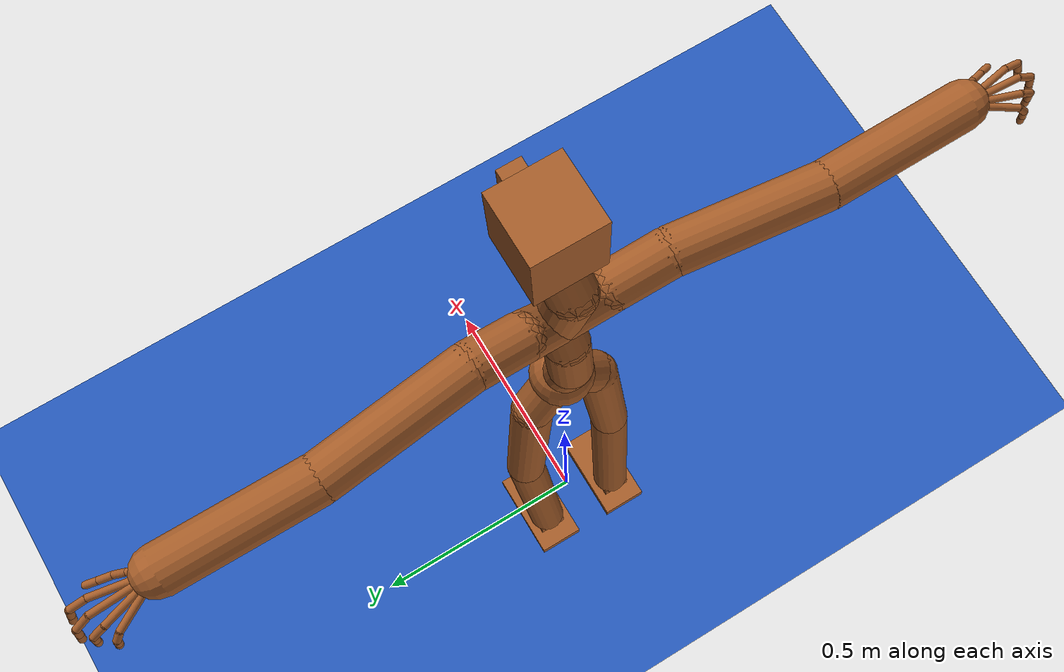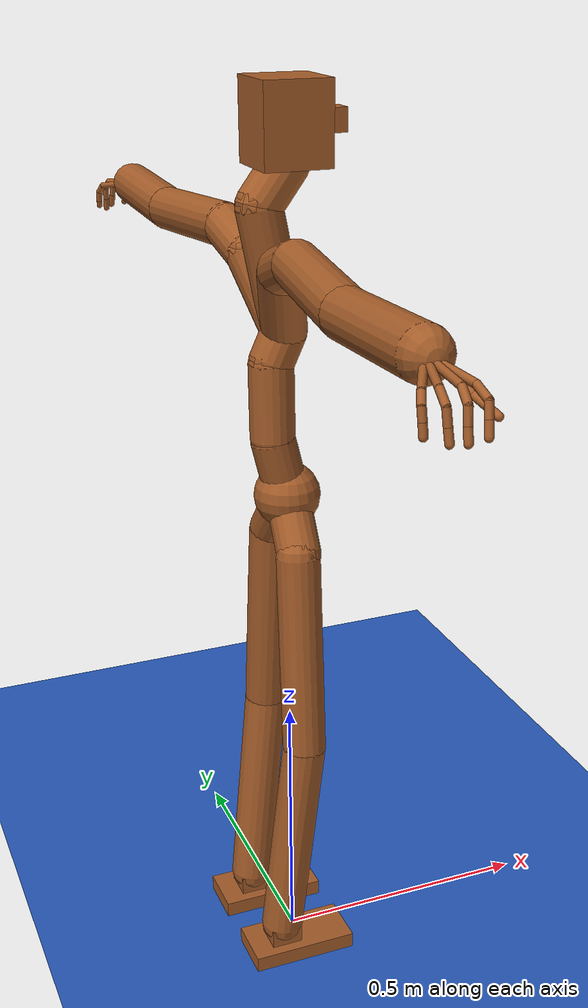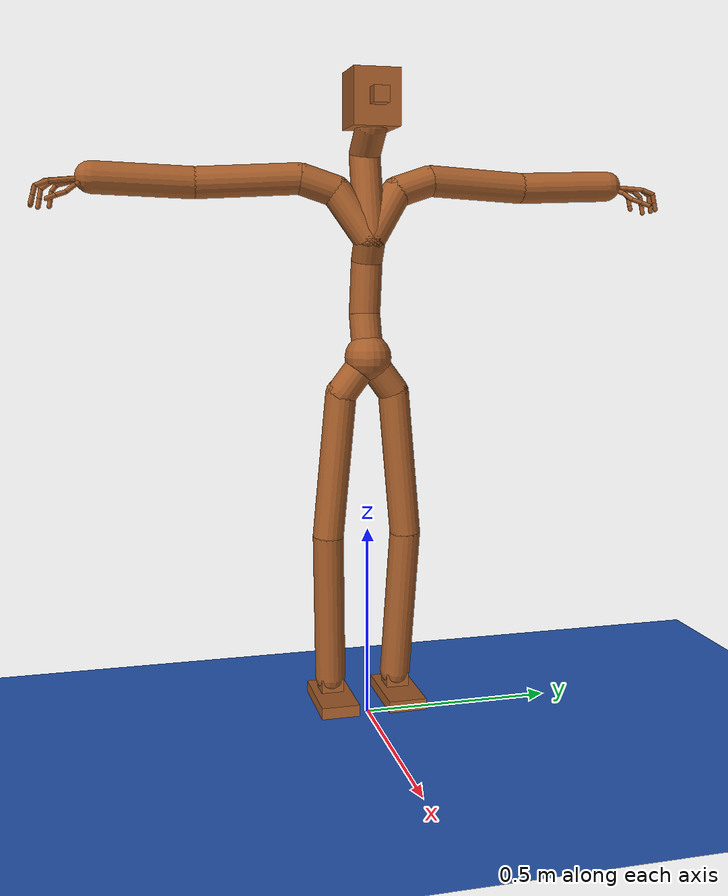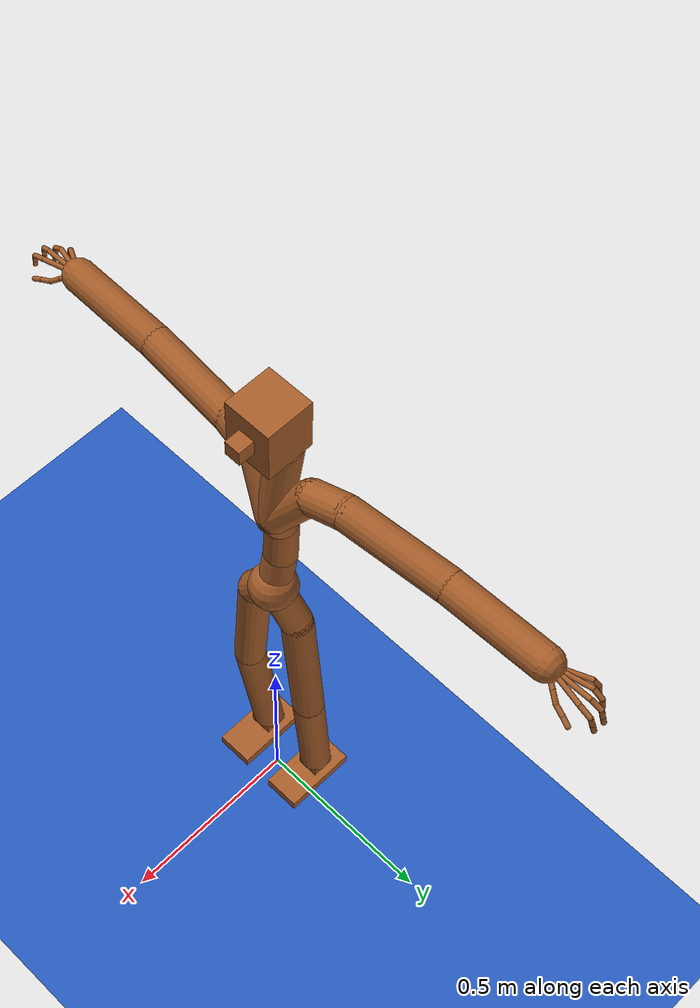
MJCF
<mujoco model="smpl-x-robot">
    <!--
            Robot Intelligence Lab
            SMPL-X Robot model

            @ Contact us : taemoon-jeong (taemoon-jeong@korea.ac.kr)
    -->
    <compiler  inertiafromgeom="true" angle="radian"/>

    <default>
        <joint limited="true" damping="1" armature="0"/>
        <geom contype="1" condim="3" margin="0.001" solref=".02 1" solimp=".8 .8 .01" material="matgeom"/>
        <motor ctrlrange="-.4 .4" ctrllimited="true"/>
    </default>

    <option timestep="0.005" iterations="50" tolerance="1e-10" solver="Newton" jacobian="dense" cone="pyramidal"/>
    <size nconmax="50" njmax="200" nstack="10000"/>

    <visual>
        <map force="0.1" zfar="30"/>
        <rgba haze="0.15 0.25 0.35 1"/>
        <quality shadowsize="2048"/>
        <global offwidth="800" offheight="800"/>
    </visual>

    <asset>
        <texture name="texgeom" type="cube" builtin="flat" mark="cross" width="127" height="1278"
            rgb1="0.8 0.6 0.4" rgb2="0.8 0.6 0.4" markrgb="1 1 1" random="0.01"/>
        <material name="matgeom" texture="texgeom" texuniform="true" rgba="0.8 0.6 0.4 1.0"/>
        <material name="self" rgba=".7 .5 .3 1"/>
        <texture name="blue_grid" type="2d" builtin="checker" rgb1=".02 .14 .44" rgb2=".27 .55 1" width="300" height="300" mark="edge" markrgb="1 1 1"/>
        <material name="blue_grid" texture="blue_grid" texrepeat="1 1" texuniform="true" reflectance=".2"/>
            <!-- Sky -->
        <texture type="skybox" builtin="gradient" rgb1="0.1 0.2 0.3" rgb2="0 0 0" width="512"
            height="3072" />
        <!-- Ground -->
        <texture type="2d" name="groundplane" builtin="checker" mark="edge" rgb1="0.3 0.4 0.5"
            rgb2="0.1 0.2 0.3" markrgb="0.8 0.8 0.8" width="300" height="300" />
        <material name="groundplane" texture="groundplane" texuniform="true" texrepeat="2 2"
            reflectance="0.2" />
    </asset>

    <worldbody>
        <light pos="0 0 3" dir="0 0 -1" directional="true" diffuse="1 1 1"/>
        <geom name="floor" type="plane" conaffinity="1" size="50 50 .05" material="blue_grid"/>
        <body name="base" pos="0 0 0.95">
            <freejoint name="base"/>
            <geom name="base" type="sphere" pos="0 0 0" size="0.06"/>
            <body name="pelvis" pos="0 0 0" euler="0 0 0" >
                <geom name="base2lpelvis" type="capsule" fromto="0 0 0 -0.006815334782004356 0.06951973587274551 -0.09140622615814209"  size="0.04" />
                <geom name="base2rpelvis" type="capsule" fromto="0 0 0 -0.004319818690419197 -0.06767047941684723 -0.09052169322967529"  size="0.04" />
                <joint name="pelvis1" type="hinge" pos="0 0 0" axis="1 0 0" range="-3.141592 3.141592" damping="60" stiffness="0" armature="0.02" />
                <joint name="pelvis2" type="hinge" pos="0 0 0" axis="0 1 0" range="-3.141592 3.141592" damping="60" stiffness="0" armature="0.02" />
                <joint name="pelvis3" type="hinge" pos="0 0 0" axis="0 0 1" range="-3.141592 3.141592" damping="60" stiffness="0" armature="0.02" />

                <body name="left_hip" pos="-0.006815334782004356 0.06951973587274551 -0.09140622615814209" euler="0 0 0">
                    <geom name="lhip2lknee" type="capsule" fromto="0 0 0 -0.004495806992 0.03427654505 -0.3751985729"  size="0.04" />
                    <joint name="l_hip1" type="hinge" pos="0 0 0" axis="1 0 0" range="-3.141592 3.141592" damping="30" stiffness="0" armature="0.01" />
                    <joint name="l_hip2" type="hinge" pos="0 0 0" axis="0 1 0" range="-3.141592 3.141592" damping="30" stiffness="0" armature="0.01" />
                    <joint name="l_hip3" type="hinge" pos="0 0 0" axis="0 0 1" range="-3.141592 3.141592" damping="30" stiffness="0" armature="0.01" />

                    <body name="left_knee" pos="-0.004495806992 0.03427654505 -0.3751985729" euler="0 0 0">
                        <geom name="lknee2lankle" type="capsule" fromto="0 0 0 -0.04369332828 -0.01359570026 -0.3979604542"  size="0.04" />
                        <joint name="l_knee" type="hinge" pos="0 0 0" axis="0 1 0" range="0.0175 2.0944" damping="30" stiffness="0" armature="0.0060" />

                        <body name="left_ankle" pos="-0.04369332828 -0.01359570026 -0.3979604542" euler="0 0 0">
                            <geom name="lankle" type="box" pos="0 0 -0.025" size="0.03 0.03 0.025" />
                            <geom name="lfoot" type="box" pos="0.03 0 -0.05" size="0.1 0.05 0.015" />
                            <joint name="l_ankle1" type="hinge" pos="0 0 0" axis="0 1 0" range="-3.141592 3.141592" stiffness="0" damping="20" armature="0.0008" />
                            <joint name="l_ankle2" type="hinge" pos="0 0 0" axis="1 0 0" range="-3.141592 3.141592" stiffness="0" damping="20" armature="0.0006" />
                            <joint name="l_ankle3" type="hinge" pos="0 0 0" axis="0 0 1" range="-0.52333333333 0.52333333333" stiffness="0" damping="20" armature="0.0006" />
                        </body>
                    </body>
                </body>

                <body name="right_hip" pos="-0.006815334782004356 -0.06951973587274551 -0.09140622615814209" euler="0 0 0">
                    <geom name="rhip2rknee" type="capsule" fromto="0 0 0 -0.004495806992 -0.03427654505 -0.3751985729"  size="0.04" />
                    <joint name="r_hip1" type="hinge" pos="0 0 0" axis="1 0 0" range="-3.141592 3.141592" damping="30" stiffness="0" armature="0.01" />
                    <joint name="r_hip2" type="hinge" pos="0 0 0" axis="0 1 0" range="-3.141592 3.141592" damping="30" stiffness="0" armature="0.01" />
                    <joint name="r_hip3" type="hinge" pos="0 0 0" axis="0 0 1" range="-3.141592 3.141592" damping="30" stiffness="0" armature="0.01" />
                    <body name="right_knee" pos="-0.004495806992 -0.03427654505 -0.3751985729" euler="0 0 0">
                        <geom name="rknee2rankle" type="capsule" fromto="0 0 0 -0.04369332828 0.01359570026 -0.3979604542"  size="0.04" />
                        <joint name="r_knee" type="hinge" pos="0 0 0" axis="0 1 0" range="0.0175 2.0944" damping="30" stiffness="0" armature="0.0060" />
                        <body name="right_ankle" pos="-0.04369332828 0.01359570026 -0.3979604542" euler="0 0 0">
                            <geom name="rankle" type="box" pos="0 0 -0.025" size="0.03 0.03 0.025" />
                            <geom name="rfoot" type="box" pos="0.03 0 -0.05" size="0.1 0.05 0.015" />
                            <joint name="r_ankle1" type="hinge" pos="0 0 0" axis="0 1 0" range="-3.141592 3.141592" stiffness="0" damping="20" armature="0.0008" />
                            <joint name="r_ankle2" type="hinge" pos="0 0 0" axis="1 0 0" range="-3.141592 3.141592" stiffness="0" damping="20" armature="0.0006" />
                            <joint name="r_ankle3" type="hinge" pos="0 0 0" axis="0 0 1" range="-0.52333333333 0.52333333333" stiffness="0" damping="20" armature="0.0006" />
                        </body>
                    </body>
                </body>

                <geom name="base2spine1" type="capsule" fromto="0 0 0 -0.02669631317257881 -0.00253287423402071 0.10896323621273041"  size="0.04" density="2226"/>
                <body name="spine1" pos="-0.02669631317257881 -0.00253287423402071 0.10896323621273041" euler="0 0 0">
                    <geom name="spine2spine" type="capsule" fromto="0 0 0 0.001092471182 0.005487040151 0.1351804286"  size="0.04" density="2226"/>
                    <joint name="spine1-1" type="hinge" pos="0 0 0" axis="0 1 0" range="-3.141592 3.141592" damping="60" stiffness="0" armature="0.02" />
                    <joint name="spine1-2" type="hinge" pos="0 0 0" axis="1 0 0" range="-3.141592 3.141592" damping="60" stiffness="0" armature="0.02" />
                    <joint name="spine1-3" type="hinge" pos="0 0 0" axis="0 0 1" range="-3.141592 3.141592" damping="60" stiffness="0" armature="0.02" />

                    <body name="spine2" pos="0.001092471182 0.005487040151 0.1351804286" euler="0 0 0">
                        <geom name="spine2spine2" type="capsule" fromto="0 0 0 0.02542456612 0.001456997823 0.05292221904"  size="0.04" density="2226"/>
                        <joint name="spine2-1" type="hinge" pos="0 0 0" axis="0 1 0" range="-3.141592 3.141592" damping="60" stiffness="0" armature="0.02" />
                        <joint name="spine2-2" type="hinge" pos="0 0 0" axis="1 0 0" range="-3.141592 3.141592" damping="60" stiffness="0" armature="0.02" />
                        <joint name="spine2-3" type="hinge" pos="0 0 0" axis="0 0 1" range="-3.141592 3.141592" damping="60" stiffness="0" armature="0.02" />

                        <body name="spine3" pos="0.02542456612 0.001456997823 0.05292221904" euler="0 0 0">
                            <geom name="spine2spine3" type="capsule" fromto="0 0 0 -0.04285703227 -0.002778389724 0.2138703763"  size="0.04" density="2226"/>
                            <joint name="spine3-1" type="hinge" pos="0 0 0" axis="0 1 0" range="-3.141592 3.141592" damping="60" stiffness="0" armature="0.02" />
                            <joint name="spine3-2" type="hinge" pos="0 0 0" axis="1 0 0" range="-3.141592 3.141592" damping="60" stiffness="0" armature="0.02" />
                            <joint name="spine3-3" type="hinge" pos="0 0 0" axis="0 0 1" range="-3.141592 3.141592" damping="60" stiffness="0" armature="0.02" />

                            <body name="neck" pos="-0.04285703227 -0.002778389724 0.2138703763" euler="0 0 0">
                                <geom name="neck2head" type="capsule" fromto="0 0 0 0.05134896934 0.00515184016 0.0649696588"  size="0.04" />
                                <joint name="neck1" type="hinge" pos="0 0 0" axis="1 0 0" range="-3.141592 3.141592" damping="5" stiffness="0" armature="0.02" />
                                <joint name="neck2" type="hinge" pos="0 0 0" axis="0 1 0" range="-3.141592 3.141592" damping="5" stiffness="0" armature="0.02" />
                                <joint name="neck3" type="hinge" pos="0 0 0" axis="0 0 1" range="-3.141592 3.141592" damping="5" stiffness="0" armature="0.02" />

                                <body name="head" pos="0.05134896934 0.00515184016 0.06496965885" euler="0 0 0">
                                    <geom name="head" type="box" pos="0 0  0.06496965885" size="0.06 0.06 0.07" />
                                    <geom name="nose" type="box" pos="0.05 0  0.06496965885" size="0.05 0.02 0.02" />
                                    <joint name="head1" type="hinge" pos="0 0 0" axis="1 0 0" range="-3.141592 3.141592" damping="5" stiffness="0" armature="0.02" />
                                    <joint name="head2" type="hinge" pos="0 0 0" axis="0 1 0" range="-3.141592 3.141592" damping="5" stiffness="0" armature="0.02" />
                                    <joint name="head3" type="hinge" pos="0 0 0" axis="0 0 1" range="-3.141592 3.141592" damping="5" stiffness="0" armature="0.02" />
                                </body>
                            </body>

                            <geom name="spine2lcollar" type="capsule" fromto="0 0 0 -0.03408960626 0.07884474564 0.1217493117"  size="0.04" />
                            <body name="left_collar" pos="-0.03408960626 0.07884474564 0.1217493117" euler="0 0 0">
                                <geom name="lcollar2lshoulder" type="capsule" fromto="0 0 0 -0.008868150413 0.09097691625 0.03046888113"  size="0.04" />
                                <joint name="l_collar1" type="hinge" pos="0 0 0" axis="1 0 0" range="-3.141592 3.141592" stiffness="0" damping="20" armature="0.0068" />
                                <joint name="l_collar2" type="hinge" pos="0 0 0" axis="0 0 1" range="-3.141592 3.141592" stiffness="0" damping="20" armature="0.0051" />
                                <joint name="l_collar3" type="hinge" pos="0 0 0" axis="0 1 0" range="-3.141592 3.141592" stiffness="0" damping="20" armature="0.0051" />

                                <body name="left_shoulder" pos="-0.008868150413 0.09097691625 0.03046888113" euler="0 0 0">
                                    <geom name="lshoulder2lelbow" type="capsule" fromto="0 0 0 -0.02745642886 0.2596122175 -0.01277205348"  size="0.04" />
                                    <joint name="l_shoulder1" type="hinge" pos="0 0 0" axis="1 0 0" range="-3.141592 3.141592" stiffness="0" damping="20" armature="0.0068" />
                                    <joint name="l_shoulder2" type="hinge" pos="0 0 0" axis="0 0 1" range="-3.141592 3.141592" stiffness="0" damping="20" armature="0.0051" />
                                    <joint name="l_shoulder3" type="hinge" pos="0 0 0" axis="0 1 0" range="-3.141592 3.141592" stiffness="0" damping="20" armature="0.0051" />

                                    <body name="left_elbow" pos="-0.02745642886 0.2596122175 -0.01277205348" euler="0 0 0">
                                        <geom name="lelbow2lwrist" type="capsule" fromto="0 0 0 -0.001170918345 0.2492336035 0.008986026049"  size="0.04" />
                                        <joint name="l_elbow" type="hinge" pos="0 0 0" axis="0 0 1" range="-2.61666666667 -0.01" stiffness="0" damping="15" armature="0.0028" />

                                        <body name="left_wrist" pos="-0.001170918345 0.2492336035 0.008986026049" euler="0 0 0">
                                            <geom name="lwrist2lindex1" type="capsule" fromto="0 0 0 0.01935114339 0.1019018292 -0.008688151836"  size="0.006" />
                                            <geom name="lwrist2lmiddle1" type="capsule" fromto="0 0 0 -0.00398080796 0.1093975306 -0.006327688694"  size="0.006" />
                                            <geom name="lwrist2lpinky1" type="capsule" fromto="0 0 0 -0.04374960065 0.08404684067 -0.0145393312"  size="0.006" />
                                            <geom name="lwrist2lring1" type="capsule" fromto="0 0 0 -0.02734463662 0.09744417667 -0.009267628193"  size="0.006" />
                                            <geom name="lwrist2lthumb1" type="capsule" fromto="0 0 0 0.02561088279 0.0406357646 -0.01797673106"  size="0.006" />

                                            <joint name="l_wrist1" type="hinge" pos="0 0 0" axis="0 1 0" range="-3.141592 3.141592" damping="5" stiffness="0" armature="0.02" />
                                            <joint name="l_wrist2" type="hinge" pos="0 0 0" axis="0 0 1" range="-3.141592 3.141592" damping="5" stiffness="0" armature="0.02" />
                                            <joint name="l_wrist3" type="hinge" pos="0 0 0" axis="1 0 0" range="-3.141592 3.141592" damping="5" stiffness="0" armature="0.02" />

                                            <body name="left_index1" pos="0.01935114339 0.1019018292 -0.008688151836" euler="0 0 0">
                                                <geom name="lindex1-lindex2" type="capsule" fromto="0 0 0 0.001150548458 0.0301489234 -0.01115390658"  size="0.006" />
                                                <joint name="l_index1" type="hinge" pos="0 0 0" axis="0 1 0" range="-3.141592 3.141592" damping="5" stiffness="0" armature="0.02" />
                                                <joint name="l_index2" type="hinge" pos="0 0 0" axis="0 0 1" range="-3.141592 3.141592" damping="5" stiffness="0" armature="0.02" />
                                                <joint name="l_index3" type="hinge" pos="0 0 0" axis="1 0 0" range="-3.141592 3.141592" damping="5" stiffness="0" armature="0.02" />

                                                <body name="left_index2" pos="0.001150548458 0.0301489234 -0.01115390658" euler="0 0 0">
                                                    <geom name="lindex2-lindex3" type="capsule" fromto="0 0 0 -0.00243325904 0.006504237652 -0.02157706022"  size="0.006" />
                                                    <joint name="l_index2-1" type="hinge" pos="0 0 0" axis="0 1 0" range="-3.141592 3.141592" damping="5" stiffness="0" armature="0.02" />
                                                    <joint name="l_index2-2" type="hinge" pos="0 0 0" axis="0 0 1" range="-3.141592 3.141592" damping="5" stiffness="0" armature="0.02" />
                                                    <joint name="l_index2-3" type="hinge" pos="0 0 0" axis="1 0 0" range="-3.141592 3.141592" damping="5" stiffness="0" armature="0.02" />

                                                    <body name="left_index3" pos="-0.00243325904 0.006504237652 -0.02157706022" euler="0 0 0">
                                                        <!-- temporary geom value for finger tip -->
                                                        <geom name="lindex3-lindextip" type="capsule" fromto="0 0 0 -0.002 0.006 -0.02"  size="0.006" />
                                                        <joint name="l_index3-1" type="hinge" pos="0 0 0" axis="0 1 0" range="-3.141592 3.141592" damping="5" stiffness="0" armature="0.02" />
                                                        <joint name="l_index3-2" type="hinge" pos="0 0 0" axis="0 0 1" range="-3.141592 3.141592" damping="5" stiffness="0" armature="0.02" />
                                                        <joint name="l_index3-3" type="hinge" pos="0 0 0" axis="1 0 0" range="-3.141592 3.141592" damping="5" stiffness="0" armature="0.02" />
                                                        <body name="left_index4" pos="-0.002 0.006 -0.02" euler="0 0 0"/>
                                                    </body>
                                                </body>
                                            </body>
                                            <body name="left_middle1" pos="-0.00398080796 0.1093975306 -0.006327688694" euler="0 0 0">
                                                <geom name="lmiddle1-lmiddle2" type="capsule" fromto="0 0 0 -0.004641152918 0.02647173405 -0.01521787047"  size="0.006" />
                                                <joint name="l_middle1" type="hinge" pos="0 0 0" axis="0 1 0" range="-3.141592 3.141592" damping="5" stiffness="0" armature="0.02" />
                                                <joint name="l_middle2" type="hinge" pos="0 0 0" axis="0 0 1" range="-3.141592 3.141592" damping="5" stiffness="0" armature="0.02" />
                                                <joint name="l_middle3" type="hinge" pos="0 0 0" axis="1 0 0" range="-3.141592 3.141592" damping="5" stiffness="0" armature="0.02" />

                                                <body name="left_middle2" pos="-0.004641152918 0.02647173405 -0.01521787047" euler="0 0 0">
                                                    <geom name="lmiddle2-lmiddle3" type="capsule" fromto="0 0 0 -0.001911483705 0.005021989346 -0.02334663272"  size="0.006" />
                                                    <joint name="l_middle2-1" type="hinge" pos="0 0 0" axis="0 1 0" range="-3.141592 3.141592" damping="5" stiffness="0" armature="0.02" />
                                                    <joint name="l_middle2-2" type="hinge" pos="0 0 0" axis="0 0 1" range="-3.141592 3.141592" damping="5" stiffness="0" armature="0.02" />
                                                    <joint name="l_middle2-3" type="hinge" pos="0 0 0" axis="1 0 0" range="-3.141592 3.141592" damping="5" stiffness="0" armature="0.02" />

                                                    <body name="left_middle3" pos="-0.001911483705 0.005021989346 -0.02334663272" euler="0 0 0">
                                                        <geom name="lmiddl3-lmiddletip" type="capsule" fromto="0 0 0 -0.0019 0.005 -0.02"  size="0.006" />
                                                        <joint name="l_middle3-1" type="hinge" pos="0 0 0" axis="0 1 0" range="-3.141592 3.141592" damping="5" stiffness="0" armature="0.02" />
                                                        <joint name="l_middle3-2" type="hinge" pos="0 0 0" axis="0 0 1" range="-3.141592 3.141592" damping="5" stiffness="0" armature="0.02" />
                                                        <joint name="l_middle3-3" type="hinge" pos="0 0 0" axis="1 0 0" range="-3.141592 3.141592" damping="5" stiffness="0" armature="0.02" />
                                                        <body name="left_middle4" pos="-0.0019 0.005 -0.02" euler="0 0 0"/>
                                                    </body>
                                                </body>
                                            </body>
                                            <body name="left_ring1" pos="-0.02734463662 0.09744417667 -0.009267628193" euler="0 0 0">
                                                <geom name="lring1-lring2" type="capsule" fromto="0 0 0 -0.001894921064 0.02356153727 -0.01605704427"  size="0.006" />
                                                <joint name="l_ring1" type="hinge" pos="0 0 0" axis="0 1 0" range="-3.141592 3.141592" damping="5" stiffness="0" armature="0.02" />
                                                <joint name="l_ring2" type="hinge" pos="0 0 0" axis="0 0 1" range="-3.141592 3.141592" damping="5" stiffness="0" armature="0.02" />
                                                <joint name="l_ring3" type="hinge" pos="0 0 0" axis="1 0 0" range="-3.141592 3.141592" damping="5" stiffness="0" armature="0.02" />

                                                <body name="left_ring2" pos="-0.001894921064 0.02356153727 -0.01605704427" euler="0 0 0">
                                                    <geom name="lring2-lring3" type="capsule" fromto="0 0 0 8.14124942e-4 0.004257023335 -0.0235479176"  size="0.006" />
                                                    <joint name="l_ring2-1" type="hinge" pos="0 0 0" axis="0 1 0" range="-3.141592 3.141592" damping="5" stiffness="0" armature="0.02" />
                                                    <joint name="l_ring2-2" type="hinge" pos="0 0 0" axis="0 0 1" range="-3.141592 3.141592" damping="5" stiffness="0" armature="0.02" />
                                                    <joint name="l_ring2-3" type="hinge" pos="0 0 0" axis="1 0 0" range="-3.141592 3.141592" damping="5" stiffness="0" armature="0.02" />

                                                    <body name="left_ring3" pos="8.14124942e-4 0.004257023335 -0.0235479176" euler="0 0 0">
                                                        <geom name="lring3-lringtip" type="capsule" fromto="0 0 0 8.1e-4 0.004 -0.02"  size="0.006" />
                                                        <joint name="l_ring3-1" type="hinge" pos="0 0 0" axis="0 1 0" range="-3.141592 3.141592" damping="5" stiffness="0" armature="0.02" />
                                                        <joint name="l_ring3-2" type="hinge" pos="0 0 0" axis="0 0 1" range="-3.141592 3.141592" damping="5" stiffness="0" armature="0.02" />
                                                        <joint name="l_ring3-3" type="hinge" pos="0 0 0" axis="1 0 0" range="-3.141592 3.141592" damping="5" stiffness="0" armature="0.02" />
                                                        <body name="left_ring4" pos="8.1e-4 0.004 -0.02" euler="0 0 0"/>
                                                    </body>
                                                </body>
                                            </body>
                                            <body name="left_pinky1" pos="-0.04374960065 0.08404684067 -0.0145393312" euler="0 0 0">
                                                <geom name="lpinky1-lpinky2" type="capsule" fromto="0 0 0 -0.005374751985 0.01212376356 -0.01444780827"  size="0.006" />
                                                <joint name="l_pinky1" type="hinge" pos="0 0 0" axis="0 1 0" range="-3.141592 3.141592" damping="5" stiffness="0" armature="0.02" />
                                                <joint name="l_pinky2" type="hinge" pos="0 0 0" axis="0 0 1" range="-3.141592 3.141592" damping="5" stiffness="0" armature="0.02" />
                                                <joint name="l_pinky3" type="hinge" pos="0 0 0" axis="1 0 0" range="-3.141592 3.141592" damping="5" stiffness="0" armature="0.02" />

                                                <body name="left_pinky2" pos="-0.005374751985 0.01212376356 -0.01444780827" euler="0 0 0">
                                                    <geom name="lpinky2-lpinky3" type="capsule" fromto="0 0 0 1.66594982e-4 0.003798186779 -0.01885265112"  size="0.006" />
                                                    <joint name="l_pinky2-1" type="hinge" pos="0 0 0" axis="0 1 0" range="-3.141592 3.141592" damping="5" stiffness="0" armature="0.02" />
                                                    <joint name="l_pinky2-2" type="hinge" pos="0 0 0" axis="0 0 1" range="-3.141592 3.141592" damping="5" stiffness="0" armature="0.02" />
                                                    <joint name="l_pinky2-3" type="hinge" pos="0 0 0" axis="1 0 0" range="-3.141592 3.141592" damping="5" stiffness="0" armature="0.02" />

                                                    <body name="left_pinky3" pos="1.66594982e-4 0.003798186779 -0.01885265112" euler="0 0 0">
                                                        <geom name="lpinky3-lpinkytip" type="capsule" fromto="0 0 0 1.6e-4 0.003 -0.01"  size="0.006" />
                                                        <joint name="l_pinky3-1" type="hinge" pos="0 0 0" axis="0 1 0" range="-3.141592 3.141592" damping="5" stiffness="0" armature="0.02" />
                                                        <joint name="l_pinky3-2" type="hinge" pos="0 0 0" axis="0 0 1" range="-3.141592 3.141592" damping="5" stiffness="0" armature="0.02" />
                                                        <joint name="l_pinky3-3" type="hinge" pos="0 0 0" axis="1 0 0" range="-3.141592 3.141592" damping="5" stiffness="0" armature="0.02" />
                                                        <body name="left_pinky4" pos="1.6e-4 0.003 -0.01" euler="0 0 0"/>
                                                    </body>
                                                </body>
                                            </body>

                                            <body name="left_thumb1" pos="0.02561088279 0.0406357646 -0.01797673106" euler="0 0 0">
                                                <geom name="lthumb1-lthumb2" type="capsule" fromto="0 0 0 0.01162331179 0.02163672447 -0.01763927937"  size="0.006" />
                                                <joint name="l_thumb1" type="hinge" pos="0 0 0" axis="0 1 0" range="-3.141592 3.141592" damping="5" stiffness="0" armature="0.02" />
                                                <joint name="l_thumb2" type="hinge" pos="0 0 0" axis="0 0 1" range="-3.141592 3.141592" damping="5" stiffness="0" armature="0.02" />
                                                <joint name="l_thumb3" type="hinge" pos="0 0 0" axis="1 0 0" range="-3.141592 3.141592" damping="5" stiffness="0" armature="0.02" />

                                                <body name="left_thumb2" pos="0.01162331179 0.02163672447 -0.01763927937" euler="0 0 0">
                                                    <geom name="lthumb2-lthumb3" type="capsule" fromto="0 0 0 0.006547933444 0.02400177717 -0.008356153965"  size="0.006" />
                                                    <joint name="l_thumb2-1" type="hinge" pos="0 0 0" axis="0 1 0" range="-3.141592 3.141592" damping="5" stiffness="0" armature="0.02" />
                                                    <joint name="l_thumb2-2" type="hinge" pos="0 0 0" axis="0 0 1" range="-3.141592 3.141592" damping="5" stiffness="0" armature="0.02" />
                                                    <joint name="l_thumb2-3" type="hinge" pos="0 0 0" axis="1 0 0" range="-3.141592 3.141592" damping="5" stiffness="0" armature="0.02" />

                                                    <body name="left_thumb3" pos="0.006547933444 0.02400177717 -0.008356153965" euler="0 0 0">
                                                        <geom name="lthumb3-lthumbtip" type="capsule" fromto="0 0 0 0.006 0.02 -0.008"  size="0.006" />
                                                        <joint name="l_thumb3-1" type="hinge" pos="0 0 0" axis="0 1 0" range="-3.141592 3.141592" damping="5" stiffness="0" armature="0.02" />
                                                        <joint name="l_thumb3-2" type="hinge" pos="0 0 0" axis="0 0 1" range="-3.141592 3.141592" damping="5" stiffness="0" armature="0.02" />
                                                        <joint name="l_thumb3-3" type="hinge" pos="0 0 0" axis="1 0 0" range="-3.141592 3.141592" damping="5" stiffness="0" armature="0.02" />
                                                        <body name="left_thumb4" pos="0.006 0.02 -0.008" euler="0 0 0"/>
                                                    </body>
                                                </body>
                                            </body>
                                        </body>
                                    </body>
                                </body>
                            </body>

                            <geom name="spine2rcollar" type="capsule" fromto="0 0 0 -0.03408960626 -0.07884474564 0.1217493117"  size="0.04" />
                            <body name="right_collar" pos="-0.03408960626 -0.07884474564 0.1217493117" euler="0 0 0">
                                <geom name="rcollar2rshoulder" type="capsule" fromto="0 0 0 -0.008868150413 -0.09097691625 0.03046888113"  size="0.04" />
                                <joint name="r_collar1" type="hinge" pos="0 0 0" axis="1 0 0" range="-3.141592 3.141592" stiffness="0" damping="20" armature="0.0068" />
                                <joint name="r_collar2" type="hinge" pos="0 0 0" axis="0 0 1" range="-3.141592 3.141592" stiffness="0" damping="20" armature="0.0051" />
                                <joint name="r_collar3" type="hinge" pos="0 0 0" axis="0 1 0" range="-3.141592 3.141592" stiffness="0" damping="20" armature="0.0051" />

                                <body name="right_shoulder" pos="-0.008868150413 -0.09097691625 0.03046888113" euler="0 0 0">
                                    <geom name="rshoulder2relbow" type="capsule" fromto="0 0 0 -0.02745642886 -0.2596122175 -0.01277205348"  size="0.04" />
                                    <joint name="r_shoulder1" type="hinge" pos="0 0 0" axis="1 0 0" range="-3.141592 3.141592" stiffness="0" damping="20" armature="0.0068" />
                                    <joint name="r_shoulder2" type="hinge" pos="0 0 0" axis="0 0 1" range="-3.141592 3.141592" stiffness="0" damping="20" armature="0.0051" />
                                    <joint name="r_shoulder3" type="hinge" pos="0 0 0" axis="0 1 0" range="-3.141592 3.141592" stiffness="0" damping="20" armature="0.0051" />

                                    <body name="right_elbow" pos="-0.02745642886 -0.2596122175 -0.01277205348" euler="0 0 0">
                                        <geom name="relbow2rwrist" type="capsule" fromto="0 0 0 -0.001170918345 -0.2492336035 0.008986026049"  size="0.04" />
                                        <joint name="r_elbow" type="hinge" pos="0 0 0" axis="0 0 1" range="0.01 2.61666666667" stiffness="0" damping="15" armature="0.0028" />

                                        <body name="right_wrist" pos="-0.001170918345 -0.2492336035 0.008986026049" euler="0 0 0">
                                            <geom name="rwrist2rindex1" type="capsule" fromto="0 0 0 0.0195999369 -0.09988051653 -0.0117828548"  size="0.006" />
                                            <geom name="rwrist2rmiddle1" type="capsule" fromto="0 0 0 -0.003733821213 -0.1073763967 -0.009421944618"  size="0.006" />
                                            <geom name="rwrist2rpinky1" type="capsule" fromto="0 0 0 -0.04350293428 -0.08202672005 -0.01763445139"  size="0.006" />
                                            <geom name="rwrist2rring1" type="capsule" fromto="0 0 0 -0.02709873021 -0.09542346001 -0.01236194372"  size="0.006" />
                                            <geom name="rwrist2rthumb1" type="capsule" fromto="0 0 0 0.02586134896 -0.03861314058 -0.02107441425"  size="0.006" />

                                            <joint name="r_wrist1" type="hinge" pos="0 0 0" axis="0 1 0" range="-3.141592 3.141592" damping="5" stiffness="0" armature="0.02" />
                                            <joint name="r_wrist2" type="hinge" pos="0 0 0" axis="0 0 1" range="-3.141592 3.141592" damping="5" stiffness="0" armature="0.02" />
                                            <joint name="r_wrist3" type="hinge" pos="0 0 0" axis="1 0 0" range="-3.141592 3.141592" damping="5" stiffness="0" armature="0.02" />

                                            <body name="right_index1" pos="0.0195999369 -0.09988051653 -0.0117828548" euler="0 0 0">
                                                <geom name="rindex1-rindex2" type="capsule" fromto="0 0 0 0.001150920987 -0.03014850616 -0.01115420461"  size="0.006" />
                                                <joint name="r_index1" type="hinge" pos="0 0 0" axis="0 1 0" range="-3.141592 3.141592" damping="5" stiffness="0" armature="0.02" />
                                                <joint name="r_index2" type="hinge" pos="0 0 0" axis="0 0 1" range="-3.141592 3.141592" damping="5" stiffness="0" armature="0.02" />
                                                <joint name="r_index3" type="hinge" pos="0 0 0" axis="1 0 0" range="-3.141592 3.141592" damping="5" stiffness="0" armature="0.02" />

                                                <body name="right_index2" pos="0.001150920987 -0.03014850616 -0.01115420461" euler="0 0 0">
                                                    <geom name="rindex2-rindex3" type="capsule" fromto="0 0 0 -0.002432338893 -0.006504833698 -0.02157700062"  size="0.006" />
                                                    <joint name="r_index2-1" type="hinge" pos="0 0 0" axis="0 1 0" range="-3.141592 3.141592" damping="5" stiffness="0" armature="0.02" />
                                                    <joint name="r_index2-2" type="hinge" pos="0 0 0" axis="0 0 1" range="-3.141592 3.141592" damping="5" stiffness="0" armature="0.02" />
                                                    <joint name="r_index2-3" type="hinge" pos="0 0 0" axis="1 0 0" range="-3.141592 3.141592" damping="5" stiffness="0" armature="0.02" />

                                                    <body name="right_index3" pos="-0.002432338893 -0.006504833698 -0.02157700062" euler="0 0 0">
                                                        <geom name="rindex3-rindextip" type="capsule" fromto="0 0 0 -0.002 -0.006 -0.02"  size="0.006" />
                                                        <joint name="r_index3-1" type="hinge" pos="0 0 0" axis="0 1 0" range="-3.141592 3.141592" damping="5" stiffness="0" armature="0.02" />
                                                        <joint name="r_index3-2" type="hinge" pos="0 0 0" axis="0 0 1" range="-3.141592 3.141592" damping="5" stiffness="0" armature="0.02" />
                                                        <joint name="r_index3-3" type="hinge" pos="0 0 0" axis="1 0 0" range="-3.141592 3.141592" damping="5" stiffness="0" armature="0.02" />
                                                        <body name="right_index4" pos="-0.002 -0.006 -0.02" euler="0 0 0"/>
                                                    </body>

                                                </body>
                                            </body>

                                            <body name="right_middle1" pos="-0.003733821213 -0.1073763967 -0.009421944618" euler="0 0 0">
                                                <geom name="rmiddle1-rmiddle2" type="capsule" fromto="0 0 0 -0.004641346633 -0.02647179365 -0.01521787047"  size="0.006" />
                                                <joint name="r_middle1" type="hinge" pos="0 0 0" axis="0 1 0" range="-3.141592 3.141592" damping="5" stiffness="0" armature="0.02" />
                                                <joint name="r_middle2" type="hinge" pos="0 0 0" axis="0 0 1" range="-3.141592 3.141592" damping="5" stiffness="0" armature="0.02" />
                                                <joint name="r_middle3" type="hinge" pos="0 0 0" axis="1 0 0" range="-3.141592 3.141592" damping="5" stiffness="0" armature="0.02" />

                                                <body name="right_middle2" pos="-0.004641346633 -0.02647179365 -0.01521787047" euler="0 0 0">
                                                    <geom name="rmiddle2-rmiddle3" type="capsule" fromto="0 0 0 -0.001911155879 -0.005021512508 -0.02334678173"  size="0.006" />
                                                    <joint name="r_middle2-1" type="hinge" pos="0 0 0" axis="0 1 0" range="-3.141592 3.141592" damping="5" stiffness="0" armature="0.02" />
                                                    <joint name="r_middle2-2" type="hinge" pos="0 0 0" axis="0 0 1" range="-3.141592 3.141592" damping="5" stiffness="0" armature="0.02" />
                                                    <joint name="r_middle2-3" type="hinge" pos="0 0 0" axis="1 0 0" range="-3.141592 3.141592" damping="5" stiffness="0" armature="0.02" />

                                                    <body name="right_middle3" pos="-0.001911155879 -0.005021512508 -0.02334678173" euler="0 0 0">
                                                        <geom name="rmiddle3-rmiddletip" type="capsule" fromto="0 0 0 -0.001 -0.005 -0.02"  size="0.006" />
                                                        <joint name="r_middle3-1" type="hinge" pos="0 0 0" axis="0 1 0" range="-3.141592 3.141592" damping="5" stiffness="0" armature="0.02" />
                                                        <joint name="r_middle3-2" type="hinge" pos="0 0 0" axis="0 0 1" range="-3.141592 3.141592" damping="5" stiffness="0" armature="0.02" />
                                                        <joint name="r_middle3-3" type="hinge" pos="0 0 0" axis="1 0 0" range="-3.141592 3.141592" damping="5" stiffness="0" armature="0.02" />
                                                        <body name="right_middle4" pos="-0.001 -0.005 -0.02" euler="0 0 0"/>
                                                    </body>
                                                </body>
                                            </body>

                                            <body name="right_ring1" pos="-0.02709873021 -0.09542346001 -0.01236194372" euler="0 0 0">
                                                <geom name="rring1-rring2" type="capsule" fromto="0 0 0 -0.001894876361 -0.02356100082 -0.01605695486"  size="0.006" />
                                                <joint name="r_ring1" type="hinge" pos="0 0 0" axis="0 1 0" range="-3.141592 3.141592" damping="5" stiffness="0" armature="0.02" />
                                                <joint name="r_ring2" type="hinge" pos="0 0 0" axis="0 0 1" range="-3.141592 3.141592" damping="5" stiffness="0" armature="0.02" />
                                                <joint name="r_ring3" type="hinge" pos="0 0 0" axis="1 0 0" range="-3.141592 3.141592" damping="5" stiffness="0" armature="0.02" />

                                                <body name="right_ring2" pos="-0.001894876361 -0.02356100082 -0.01605695486" euler="0 0 0">
                                                    <geom name="rring2-rring3" type="capsule" fromto="0 0 0 8.15756619e-4 -0.004256904125 -0.02354767919"  size="0.006" />
                                                    <joint name="r_ring2-1" type="hinge" pos="0 0 0" axis="0 1 0" range="-3.141592 3.141592" damping="5" stiffness="0" armature="0.02" />
                                                    <joint name="r_ring2-2" type="hinge" pos="0 0 0" axis="0 0 1" range="-3.141592 3.141592" damping="5" stiffness="0" armature="0.02" />
                                                    <joint name="r_ring2-3" type="hinge" pos="0 0 0" axis="1 0 0" range="-3.141592 3.141592" damping="5" stiffness="0" armature="0.02" />

                                                    <body name="right_ring3" pos="8.15756619e-4 -0.004256904125 -0.02354767919" euler="0 0 0">
                                                        <geom name="rring3-rringtip" type="capsule" fromto="0 0 0 8.1e-4 -0.004 -0.02"  size="0.006" />
                                                        <joint name="r_ring3-1" type="hinge" pos="0 0 0" axis="0 1 0" range="-3.141592 3.141592" damping="5" stiffness="0" armature="0.02" />
                                                        <joint name="r_ring3-2" type="hinge" pos="0 0 0" axis="0 0 1" range="-3.141592 3.141592" damping="5" stiffness="0" armature="0.02" />
                                                        <joint name="r_ring3-3" type="hinge" pos="0 0 0" axis="1 0 0" range="-3.141592 3.141592" damping="5" stiffness="0" armature="0.02" />
                                                        <body name="right_ring4" pos="8.1e-4 -0.004 -0.02" euler="0 0 0"/>
                                                    </body>
                                                </body>
                                            </body>

                                            <body name="right_pinky1" pos="-0.04350293428 -0.08202672005 -0.01763445139" euler="0 0 0">
                                                <geom name="rpinky1-rpinky2" type="capsule" fromto="0 0 0 -0.005374066532 -0.01212316751 -0.01444762945"  size="0.006" />
                                                <joint name="r_pinky1" type="hinge" pos="0 0 0" axis="0 1 0" range="-3.141592 3.141592" damping="5" stiffness="0" armature="0.02" />
                                                <joint name="r_pinky2" type="hinge" pos="0 0 0" axis="0 0 1" range="-3.141592 3.141592" damping="5" stiffness="0" armature="0.02" />
                                                <joint name="r_pinky3" type="hinge" pos="0 0 0" axis="1 0 0" range="-3.141592 3.141592" damping="5" stiffness="0" armature="0.02" />

                                                <body name="right_pinky2" pos="-0.005374066532 -0.01212316751 -0.01444762945" euler="0 0 0">
                                                    <geom name="rpinky2-rpinky3" type="capsule" fromto="0 0 0 1.67131424e-4 -0.00379806757 -0.01885226369"  size="0.006" />
                                                    <joint name="r_pinky2-1" type="hinge" pos="0 0 0" axis="0 1 0" range="-3.141592 3.141592" damping="5" stiffness="0" armature="0.02" />
                                                    <joint name="r_pinky2-2" type="hinge" pos="0 0 0" axis="0 0 1" range="-3.141592 3.141592" damping="5" stiffness="0" armature="0.02" />
                                                    <joint name="r_pinky2-3" type="hinge" pos="0 0 0" axis="1 0 0" range="-3.141592 3.141592" damping="5" stiffness="0" armature="0.02" />

                                                    <body name="right_pinky3" pos="1.67131424e-4 -0.00379806757 -0.01885226369" euler="0 0 0">
                                                        <geom name="rpinky3-rpinkytip" type="capsule" fromto="0 0 0 1.6e-4 -0.003 -0.018"  size="0.006" />
                                                        <joint name="r_pinky3-1" type="hinge" pos="0 0 0" axis="0 1 0" range="-3.141592 3.141592" damping="5" stiffness="0" armature="0.02" />
                                                        <joint name="r_pinky3-2" type="hinge" pos="0 0 0" axis="0 0 1" range="-3.141592 3.141592" damping="5" stiffness="0" armature="0.02" />
                                                        <joint name="r_pinky3-3" type="hinge" pos="0 0 0" axis="1 0 0" range="-3.141592 3.141592" damping="5" stiffness="0" armature="0.02" />
                                                        <body name="right_pinky4" pos="1.6e-4 -0.003 -0.018" euler="0 0 0"/>
                                                    </body>
                                                </body>
                                            </body>

                                            <body name="right_thumb1" pos="0.02586134896 -0.03861314058 -0.02107441425" euler="0 0 0">
                                                <geom name="rthumb1-rthumb2" type="capsule" fromto="0 0 0 0.01162325218 -0.02163636684 -0.01763868332"  size="0.006" />
                                                <joint name="r_thumb1" type="hinge" pos="0 0 0" axis="0 1 0" range="-3.141592 3.141592" damping="5" stiffness="0" armature="0.02" />
                                                <joint name="r_thumb2" type="hinge" pos="0 0 0" axis="0 0 1" range="-3.141592 3.141592" damping="5" stiffness="0" armature="0.02" />
                                                <joint name="r_thumb3" type="hinge" pos="0 0 0" axis="1 0 0" range="-3.141592 3.141592" damping="5" stiffness="0" armature="0.02" />

                                                <body name="right_thumb2" pos="0.01162325218 -0.02163636684 -0.01763868332" euler="0 0 0">
                                                    <geom name="rthumb2-rthumb3" type="capsule" fromto="0 0 0 0.006546743214 -0.02400374413 -0.008353203535"  size="0.006" />
                                                    <joint name="r_thumb2-1" type="hinge" pos="0 0 0" axis="0 1 0" range="-3.141592 3.141592" damping="5" stiffness="0" armature="0.02" />
                                                    <joint name="r_thumb2-2" type="hinge" pos="0 0 0" axis="0 0 1" range="-3.141592 3.141592" damping="5" stiffness="0" armature="0.02" />
                                                    <joint name="r_thumb2-3" type="hinge" pos="0 0 0" axis="1 0 0" range="-3.141592 3.141592" damping="5" stiffness="0" armature="0.02" />

                                                    <body name="right_thumb3" pos="0.006546743214 -0.02400374413 -0.008353203535" euler="0 0 0">
                                                        <geom name="rthumb3-rthumbtip" type="capsule" fromto="0 0 0 0.006 -0.02 -0.008"  size="0.006" />
                                                        <joint name="r_thumb3-1" type="hinge" pos="0 0 0" axis="0 1 0" range="-3.141592 3.141592" damping="5" stiffness="0" armature="0.02" />
                                                        <joint name="r_thumb3-2" type="hinge" pos="0 0 0" axis="0 0 1" range="-3.141592 3.141592" damping="5" stiffness="0" armature="0.02" />
                                                        <joint name="r_thumb3-3" type="hinge" pos="0 0 0" axis="1 0 0" range="-3.141592 3.141592" damping="5" stiffness="0" armature="0.02" />
                                                        <body name="right_thumb4" pos="0.006 -0.02 -0.008" euler="0 0 0"/>
                                                    </body>
                                                </body>
                                            </body>
                                        </body>
                                    </body>
                                </body>
                            </body>
                        </body>
                    </body>
                </body>
            </body>
        </body>
    </worldbody>

    <actuator>
        <!-- Pelvis -->
        <motor name="pelvis1"       gear="200" joint="pelvis1" />
        <motor name="pelvis2"       gear="200" joint="pelvis2" />
        <motor name="pelvis3"       gear="200" joint="pelvis3" />

        <!-- Left Leg -->
        <motor name="l_hip1"       gear="200" joint="l_hip1" />
        <motor name="l_hip2"       gear="200" joint="l_hip2" />
        <motor name="l_hip3"       gear="200" joint="l_hip3" />

        <motor name="l_knee"       gear="200" joint="l_knee" />

        <motor name="l_ankle1"       gear="200" joint="l_ankle1" />
        <motor name="l_ankle2"       gear="200" joint="l_ankle2" />
        <motor name="l_ankle3"       gear="200" joint="l_ankle3" />

        <!-- Right Leg -->
        <motor name="r_hip1"       gear="200" joint="r_hip1" />
        <motor name="r_hip2"       gear="200" joint="r_hip2" />
        <motor name="r_hip3"       gear="200" joint="r_hip3" />

        <motor name="r_knee"       gear="200" joint="r_hip1" />

        <motor name="r_ankle1"       gear="200" joint="r_ankle1" />
        <motor name="r_ankle2"       gear="200" joint="r_ankle2" />
        <motor name="r_ankle3"       gear="200" joint="r_ankle3" />

        <!-- Spine -->
        <motor name="spine1-1"            gear="200" joint="spine1-1" />
        <motor name="spine1-2"            gear="200" joint="spine1-2" />
        <motor name="spine1-3"            gear="200" joint="spine1-3" />

        <motor name="spine2-1"            gear="200" joint="spine2-1" />
        <motor name="spine2-2"            gear="200" joint="spine2-2" />
        <motor name="spine2-3"            gear="200" joint="spine2-3" />

        <motor name="spine3-1"            gear="200" joint="spine3-1" />
        <motor name="spine3-2"            gear="200" joint="spine3-2" />
        <motor name="spine3-3"            gear="200" joint="spine3-3" />

        <!-- Spine -->
        <motor name="neck1"            gear="200" joint="neck1" />
        <motor name="neck2"            gear="200" joint="neck2" />
        <motor name="neck3"            gear="200" joint="neck3" />

        <!-- Head -->
        <motor name="head1"             gear="200" joint="head1" />
        <motor name="head2"             gear="200" joint="head2" />
        <motor name="head3"             gear="200" joint="head3" />

        <!-- Left Arm -->
        <motor name="l_collar1"         gear="100" joint="l_collar1" />
        <motor name="l_collar2"         gear="100" joint="l_collar2" />
        <motor name="l_collar3"         gear="100" joint="l_collar3" />

        <motor name="l_shoulder1"       gear="100" joint="l_shoulder1" />
        <motor name="l_shoulder2"       gear="100" joint="l_shoulder2" />
        <motor name="l_shoulder3"       gear="100" joint="l_shoulder3" />

        <motor name="l_elbow"           gear="200" joint="l_elbow" />

        <motor name="l_wrist1"          gear="100" joint="l_wrist1" />
        <motor name="l_wrist2"          gear="100" joint="l_wrist2" />
        <motor name="l_wrist3"          gear="100" joint="l_wrist3" />

        <!-- Left Finger -->
        <motor name="l_index3"          gear="100" joint="l_index3" />
        <motor name="l_index2-3"        gear="100" joint="l_index2-3" />
        <motor name="l_index3-3"        gear="100" joint="l_index3-3" />

        <motor name="l_middle3"         gear="100" joint="l_middle3" />
        <motor name="l_middle2-3"       gear="100" joint="l_middle2-3" />
        <motor name="l_middle3-3"       gear="100" joint="l_middle3-3" />

        <motor name="l_pinky3"          gear="100" joint="l_pinky3" />
        <motor name="l_pinky2-3"        gear="100" joint="l_pinky2-3" />
        <motor name="l_pinky3-3"        gear="100" joint="l_pinky3-3" />

        <motor name="l_ring3"           gear="100" joint="l_ring3" />
        <motor name="l_ring2-3"         gear="100" joint="l_ring2-3" />
        <motor name="l_ring3-3"         gear="100" joint="l_ring3-3" />

        <motor name="l_thumb1"          gear="100" joint="l_thumb1" />
        <motor name="l_thumb2"          gear="100" joint="l_thumb2" />
        <motor name="l_thumb3"          gear="100" joint="l_thumb3" />
        <motor name="l_thumb2-1"        gear="100" joint="l_thumb2-1" />
        <motor name="l_thumb2-2"        gear="100" joint="l_thumb2-2" />
        <motor name="l_thumb2-3"        gear="100" joint="l_thumb2-3" />
        <motor name="l_thumb3-1"        gear="100" joint="l_thumb3-1" />
        <motor name="l_thumb3-2"        gear="100" joint="l_thumb3-2" />
        <motor name="l_thumb3-3"        gear="100" joint="l_thumb3-3" />

        <!-- Right Arm -->
        <motor name="r_collar1"         gear="100" joint="r_collar1" />
        <motor name="r_collar2"         gear="100" joint="r_collar2" />
        <motor name="r_collar3"         gear="100" joint="r_collar3" />

        <motor name="r_shoulder1"       gear="100" joint="r_shoulder1" />
        <motor name="r_shoulder2"       gear="100" joint="r_shoulder2" />
        <motor name="r_shoulder3"       gear="100" joint="r_shoulder3" />

        <motor name="r_elbow"           gear="200" joint="r_elbow" />

        <motor name="r_wrist1"          gear="100" joint="r_wrist1" />
        <motor name="r_wrist2"          gear="100" joint="r_wrist2" />
        <motor name="r_wrist3"          gear="100" joint="r_wrist3" />

        <!-- Right Finger -->
        <motor name="r_index3"          gear="100" joint="r_index3" />
        <motor name="r_index2-3"        gear="100" joint="r_index2-3" />
        <motor name="r_index3-3"        gear="100" joint="r_index3-3" />

        <motor name="r_middle3"         gear="100" joint="r_middle3" />
        <motor name="r_middle2-3"       gear="100" joint="r_middle2-3" />
        <motor name="r_middle3-3"       gear="100" joint="r_middle3-3" />

        <motor name="r_pinky3"          gear="100" joint="r_pinky3" />
        <motor name="r_pinky2-3"        gear="100" joint="r_pinky2-3" />
        <motor name="r_pinky3-3"        gear="100" joint="r_pinky3-3" />

        <motor name="r_ring3"           gear="100" joint="r_ring3" />
        <motor name="r_ring2-3"         gear="100" joint="r_ring2-3" />
        <motor name="r_ring3-3"         gear="100" joint="r_ring3-3" />

        <motor name="r_thumb1"          gear="100" joint="r_thumb1" />
        <motor name="r_thumb2"          gear="100" joint="r_thumb2" />
        <motor name="r_thumb3"          gear="100" joint="r_thumb3" />
        <motor name="r_thumb2-1"        gear="100" joint="r_thumb2-1" />
        <motor name="r_thumb2-2"        gear="100" joint="r_thumb2-2" />
        <motor name="r_thumb2-3"        gear="100" joint="r_thumb2-3" />
        <motor name="r_thumb3-1"        gear="100" joint="r_thumb3-1" />
        <motor name="r_thumb3-2"        gear="100" joint="r_thumb3-2" />
        <motor name="r_thumb3-3"        gear="100" joint="r_thumb3-3" />
    </actuator>

    <contact>
        <exclude body1="neck" body2="right_shoulder"/>
        <exclude body1="spine3" body2="right_shoulder"/>
        <exclude body1="right_shoulder" body2="right_elbow"/>
        <exclude body1="right_elbow" body2="right_wrist"/>

        <exclude body1="neck" body2="left_shoulder"/>
        <exclude body1="spine3" body2="left_shoulder"/>
        <exclude body1="left_shoulder" body2="left_elbow"/>
        <exclude body1="left_elbow" body2="left_wrist"/>

        <exclude body1="neck" body2="spine3"/>
        <exclude body1="spine1" body2="pelvis"/>
        <exclude body1="pelvis" body2="base"/>

        <exclude body1="pelvis" body2="right_hip"/>
        <exclude body1="right_hip" body2="right_knee"/>
        <exclude body1="right_knee" body2="right_ankle"/>

        <exclude body1="pelvis" body2="left_hip"/>
        <exclude body1="left_hip" body2="left_knee"/>
        <exclude body1="left_knee" body2="left_ankle"/>
    </contact>

</mujoco>
